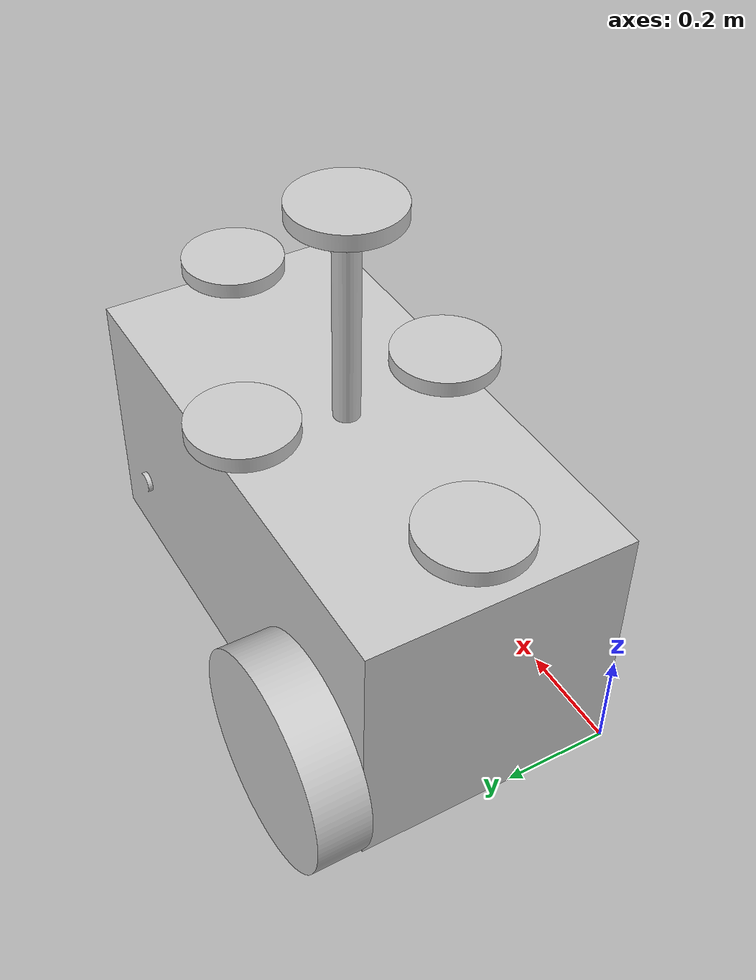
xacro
<?xml version="1.0" ?>
<robot name="car" xmlns:xacro="http://www.ros.org/wiki/xacro">

<xacro:include filename="$(find car)/urdf/materials.xacro" />
<xacro:include filename="$(find car)/urdf/car.trans" />
<xacro:include filename="$(find car)/urdf/car.gazebo" />
<xacro:include filename="$(find car)/urdf/car.plugin.xacro" />
<xacro:include filename="$(find car)/urdf/depth.plugin.xacro" />
<xacro:include filename="$(find car)/urdf/odom.plugin.xacro" />
<link name="base_link">
  <inertial>
    <origin xyz="0.5000181378162949 0.25000000000000006 0.2517249688727959" rpy="0 0 0"/>
    <mass value="1971.5261098530282"/>
    <inertia ixx="83.35609" iyy="206.212802" izz="204.780211" ixy="0.0" iyz="0.0" ixz="-0.007768"/>
  </inertial>
  <visual>
    <origin xyz="0 0 0" rpy="0 0 0"/>
    <geometry>
      <mesh filename="file://$(find car)/meshes/base_link.stl" scale="0.001 0.001 0.001"/>
    </geometry>
    <material name="silver"/>
  </visual>
  <collision>
    <origin xyz="0 0 0" rpy="0 0 0"/>
    <geometry>
      <mesh filename="file://$(find car)/meshes/base_link.stl" scale="0.001 0.001 0.001"/>
    </geometry>
  </collision>
</link>

<link name="Wheel_front_right_1">
  <inertial>
    <origin xyz="0.0 -0.05000000000000001 0.0" rpy="0 0 0"/>
    <mass value="98.6460093227195"/>
    <inertia ixx="1.068665" iyy="1.97292" izz="1.068665" ixy="-0.0" iyz="-0.0" ixz="0.0"/>
  </inertial>
  <visual>
    <origin xyz="-0.875 0.01 -0.15" rpy="0 0 0"/>
    <geometry>
      <mesh filename="file://$(find car)/meshes/Wheel_front_right_1.stl" scale="0.001 0.001 0.001"/>
    </geometry>
    <material name="silver"/>
  </visual>
  <collision>
    <origin xyz="-0.875 0.01 -0.15" rpy="0 0 0"/>
    <geometry>
      <mesh filename="file://$(find car)/meshes/Wheel_front_right_1.stl" scale="0.001 0.001 0.001"/>
    </geometry>
  </collision>
</link>

<link name="Wheel_front_left_1">
  <inertial>
    <origin xyz="0.0 0.050000000000000044 0.0" rpy="0 0 0"/>
    <mass value="98.6460093227195"/>
    <inertia ixx="1.068665" iyy="1.97292" izz="1.068665" ixy="0.0" iyz="0.0" ixz="0.0"/>
  </inertial>
  <visual>
    <origin xyz="-0.875 -0.51 -0.15" rpy="0 0 0"/>
    <geometry>
      <mesh filename="file://$(find car)/meshes/Wheel_front_left_1.stl" scale="0.001 0.001 0.001"/>
    </geometry>
    <material name="silver"/>
  </visual>
  <collision>
    <origin xyz="-0.875 -0.51 -0.15" rpy="0 0 0"/>
    <geometry>
      <mesh filename="file://$(find car)/meshes/Wheel_front_left_1.stl" scale="0.001 0.001 0.001"/>
    </geometry>
  </collision>
</link>

<link name="Wheel_back_left_1">
  <inertial>
    <origin xyz="-2.7755575615628914e-17 0.050000000000000155 0.0" rpy="0 0 0"/>
    <mass value="98.6460093227195"/>
    <inertia ixx="1.068665" iyy="1.97292" izz="1.068665" ixy="0.0" iyz="0.0" ixz="0.0"/>
  </inertial>
  <visual>
    <origin xyz="-0.15 -0.51 -0.15" rpy="0 0 0"/>
    <geometry>
      <mesh filename="file://$(find car)/meshes/Wheel_back_left_1.stl" scale="0.001 0.001 0.001"/>
    </geometry>
    <material name="silver"/>
  </visual>
  <collision>
    <origin xyz="-0.15 -0.51 -0.15" rpy="0 0 0"/>
    <geometry>
      <mesh filename="file://$(find car)/meshes/Wheel_back_left_1.stl" scale="0.001 0.001 0.001"/>
    </geometry>
  </collision>
</link>

<link name="Wheel_back_right_1">
  <inertial>
    <origin xyz="-2.7755575615628914e-17 -0.05000000000000001 0.0" rpy="0 0 0"/>
    <mass value="98.6460093227195"/>
    <inertia ixx="1.068665" iyy="1.97292" izz="1.068665" ixy="0.0" iyz="-0.0" ixz="0.0"/>
  </inertial>
  <visual>
    <origin xyz="-0.15 0.01 -0.15" rpy="0 0 0"/>
    <geometry>
      <mesh filename="file://$(find car)/meshes/Wheel_back_right_1.stl" scale="0.001 0.001 0.001"/>
    </geometry>
    <material name="silver"/>
  </visual>
  <collision>
    <origin xyz="-0.15 0.01 -0.15" rpy="0 0 0"/>
    <geometry>
      <mesh filename="file://$(find car)/meshes/Wheel_back_right_1.stl" scale="0.001 0.001 0.001"/>
    </geometry>
  </collision>
</link>

<link name="Laser_1">
  <inertial>
    <origin xyz="1.1102230246251565e-16 -2.7755575615628914e-17 0.015000000000000013" rpy="0 0 0"/>
    <mass value="7.398450699203962"/>
    <inertia ixx="0.019051" iyy="0.019051" izz="0.036992" ixy="0.0" iyz="0.0" ixz="0.0"/>
  </inertial>
  <visual>
    <origin xyz="-0.5 -0.25 -0.9" rpy="0 0 0"/>
    <geometry>
      <mesh filename="file://$(find car)/meshes/Laser_1.stl" scale="0.001 0.001 0.001"/>
    </geometry>
    <material name="silver"/>
  </visual>
  <collision>
    <origin xyz="-0.5 -0.25 -0.9" rpy="0 0 0"/>
    <geometry>
      <mesh filename="file://$(find car)/meshes/Laser_1.stl" scale="0.001 0.001 0.001"/>
    </geometry>
  </collision>
</link>

<link name="Camara_back_1">
  <inertial>
    <origin xyz="6.938893903907228e-17 -2.7755575615628914e-17 0.015000000000000013" rpy="0 0 0"/>
    <mass value="7.398450699203962"/>
    <inertia ixx="0.019051" iyy="0.019051" izz="0.036992" ixy="-0.0" iyz="0.0" ixz="-0.0"/>
  </inertial>
  <visual>
    <origin xyz="-0.1 -0.25 -0.54" rpy="0 0 0"/>
    <geometry>
      <mesh filename="file://$(find car)/meshes/Camara_back_1.stl" scale="0.001 0.001 0.001"/>
    </geometry>
    <material name="silver"/>
  </visual>
  <collision>
    <origin xyz="-0.1 -0.25 -0.54" rpy="0 0 0"/>
    <geometry>
      <mesh filename="file://$(find car)/meshes/Camara_back_1.stl" scale="0.001 0.001 0.001"/>
    </geometry>
  </collision>
</link>

<link name="Camara_left_1">
  <inertial>
    <origin xyz="-5.551115123125783e-17 0.0 0.015000000000000013" rpy="0 0 0"/>
    <mass value="7.398450699203962"/>
    <inertia ixx="0.019051" iyy="0.019051" izz="0.036992" ixy="0.0" iyz="0.0" ixz="0.0"/>
  </inertial>
  <visual>
    <origin xyz="-0.5 -0.45 -0.54" rpy="0 0 0"/>
    <geometry>
      <mesh filename="file://$(find car)/meshes/Camara_left_1.stl" scale="0.001 0.001 0.001"/>
    </geometry>
    <material name="silver"/>
  </visual>
  <collision>
    <origin xyz="-0.5 -0.45 -0.54" rpy="0 0 0"/>
    <geometry>
      <mesh filename="file://$(find car)/meshes/Camara_left_1.stl" scale="0.001 0.001 0.001"/>
    </geometry>
  </collision>
</link>

<link name="Camara_front_1">
  <inertial>
    <origin xyz="0.0 -2.7755575615628914e-17 0.015000000000000013" rpy="0 0 0"/>
    <mass value="7.398450699203962"/>
    <inertia ixx="0.019051" iyy="0.019051" izz="0.036992" ixy="0.0" iyz="0.0" ixz="0.0"/>
  </inertial>
  <visual>
    <origin xyz="-0.95 -0.25 -0.54" rpy="0 0 0"/>
    <geometry>
      <mesh filename="file://$(find car)/meshes/Camara_front_1.stl" scale="0.001 0.001 0.001"/>
    </geometry>
    <material name="silver"/>
  </visual>
  <collision>
    <origin xyz="-0.95 -0.25 -0.54" rpy="0 0 0"/>
    <geometry>
      <mesh filename="file://$(find car)/meshes/Camara_front_1.stl" scale="0.001 0.001 0.001"/>
    </geometry>
  </collision>
</link>

<link name="Camara_right_1">
  <inertial>
    <origin xyz="1.1102230246251565e-16 -1.3877787807814457e-17 0.015000000000000013" rpy="0 0 0"/>
    <mass value="7.398450699203962"/>
    <inertia ixx="0.019051" iyy="0.019051" izz="0.036992" ixy="0.0" iyz="0.0" ixz="0.0"/>
  </inertial>
  <visual>
    <origin xyz="-0.5 -0.05 -0.54" rpy="0 0 0"/>
    <geometry>
      <mesh filename="file://$(find car)/meshes/Camara_right_1.stl" scale="0.001 0.001 0.001"/>
    </geometry>
    <material name="silver"/>
  </visual>
  <collision>
    <origin xyz="-0.5 -0.05 -0.54" rpy="0 0 0"/>
    <geometry>
      <mesh filename="file://$(find car)/meshes/Camara_right_1.stl" scale="0.001 0.001 0.001"/>
    </geometry>
  </collision>
</link>

<joint name="revolute_right_wheel" type="continuous">
  <origin xyz="0.875 -0.01 0.15" rpy="0 0 0"/>
  <parent link="base_link"/>
  <child link="Wheel_front_right_1"/>
  <axis xyz="0.0 -1.0 0.0"/>
</joint>

<joint name="revolute_left_wheel" type="continuous">
  <origin xyz="0.875 0.51 0.15" rpy="0 0 0"/>
  <parent link="base_link"/>
  <child link="Wheel_front_left_1"/>
  <axis xyz="0.0 1.0 0.0"/>
</joint>

<joint name="revolute_back_left_wheel" type="continuous">
  <origin xyz="0.15 0.51 0.15" rpy="0 0 0"/>
  <parent link="base_link"/>
  <child link="Wheel_back_left_1"/>
  <axis xyz="0.0 1.0 0.0"/>
</joint>

<joint name="revolute_back_right_wheel" type="continuous">
  <origin xyz="0.15 -0.01 0.15" rpy="0 0 0"/>
  <parent link="base_link"/>
  <child link="Wheel_back_right_1"/>
  <axis xyz="0.0 -1.0 0.0"/>
</joint>

<joint name="revolute_laser" type="continuous">
  <origin xyz="0.5 0.25 0.9" rpy="0 0 0"/>
  <parent link="base_link"/>
  <child link="Laser_1"/>
  <axis xyz="0.0 0.0 1.0"/>
</joint>

<joint name="revolute_camara_back" type="continuous">
  <origin xyz="0.1 0.25 0.54" rpy="0 0 0"/>
  <parent link="base_link"/>
  <child link="Camara_back_1"/>
  <axis xyz="0.0 0.0 1.0"/>
</joint>

<joint name="revoute_camara_left" type="continuous">
  <origin xyz="0.5 0.45 0.54" rpy="0 0 0"/>
  <parent link="base_link"/>
  <child link="Camara_left_1"/>
  <axis xyz="0.0 0.0 1.0"/>
</joint>

<joint name="revolute_camara_front" type="continuous">
  <origin xyz="0.95 0.25 0.54" rpy="0 0 0"/>
  <parent link="base_link"/>
  <child link="Camara_front_1"/>
  <axis xyz="0.0 0.0 1.0"/>
</joint>

<link name="camera_optical_frame">
</link>

<joint name="camera_optical_joint" type="fixed">
  <parent link="Camara_front_1"/>
  <child link="camera_optical_frame"/>
  <!-- Ajusta rpy para alinear el frame óptico -->
  <origin xyz="0 0 0" rpy="-1.5708 0 -1.5708"/>
</joint>

<joint name="revolute_camara_right" type="continuous">
  <origin xyz="0.5 0.05 0.54" rpy="0 0 0"/>
  <parent link="base_link"/>
  <child link="Camara_right_1"/>
  <axis xyz="0.0 0.0 1.0"/>
</joint>

</robot>

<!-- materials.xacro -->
<robot name="car" xmlns:xacro="http://www.ros.org/wiki/xacro" >

<material name="silver">
  <color rgba="0.800 0.800 0.800 1.000"/>
</material>

</robot>

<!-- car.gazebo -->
<robot name="car" xmlns:xacro="http://www.ros.org/wiki/xacro" >

<xacro:property name="body_color" value="Gazebo/Silver" />

<gazebo>
  <plugin name="control" filename="libgazebo_ros_control.so"/>
</gazebo>
<gazebo reference="base_link">
  <material>${body_color}</material>
  <mu1>0.2</mu1>
  <mu2>0.2</mu2>
  <self_collide>true</self_collide>
  <gravity>true</gravity>
</gazebo>

<gazebo reference="Wheel_front_right_1">
  <material>${body_color}</material>
  <mu1>0.2</mu1>
  <mu2>0.2</mu2>
  <self_collide>true</self_collide>
</gazebo>

<gazebo reference="Wheel_front_left_1">
  <material>${body_color}</material>
  <mu1>0.2</mu1>
  <mu2>0.2</mu2>
  <self_collide>true</self_collide>
</gazebo>

<gazebo reference="Wheel_back_left_1">
  <material>${body_color}</material>
  <mu1>0.2</mu1>
  <mu2>0.2</mu2>
  <self_collide>true</self_collide>
</gazebo>

<gazebo reference="Wheel_back_right_1">
  <material>${body_color}</material>
  <mu1>0.2</mu1>
  <mu2>0.2</mu2>
  <self_collide>true</self_collide>
</gazebo>

<gazebo reference="Laser_1">
  <material>${body_color}</material>
  <mu1>0.2</mu1>
  <mu2>0.2</mu2>
  <self_collide>true</self_collide>
</gazebo>

<gazebo reference="Camara_back_1">
  <material>${body_color}</material>
  <mu1>0.2</mu1>
  <mu2>0.2</mu2>
  <self_collide>true</self_collide>
</gazebo>

<gazebo reference="Camara_left_1">
  <material>${body_color}</material>
  <mu1>0.2</mu1>
  <mu2>0.2</mu2>
  <self_collide>true</self_collide>
</gazebo>

<gazebo reference="Camara_front_1">
  <material>${body_color}</material>
  <mu1>0.2</mu1>
  <mu2>0.2</mu2>
  <self_collide>true</self_collide>
</gazebo>

<gazebo reference="Camara_right_1">
  <material>${body_color}</material>
  <mu1>0.2</mu1>
  <mu2>0.2</mu2>
  <self_collide>true</self_collide>
</gazebo>

</robot>
